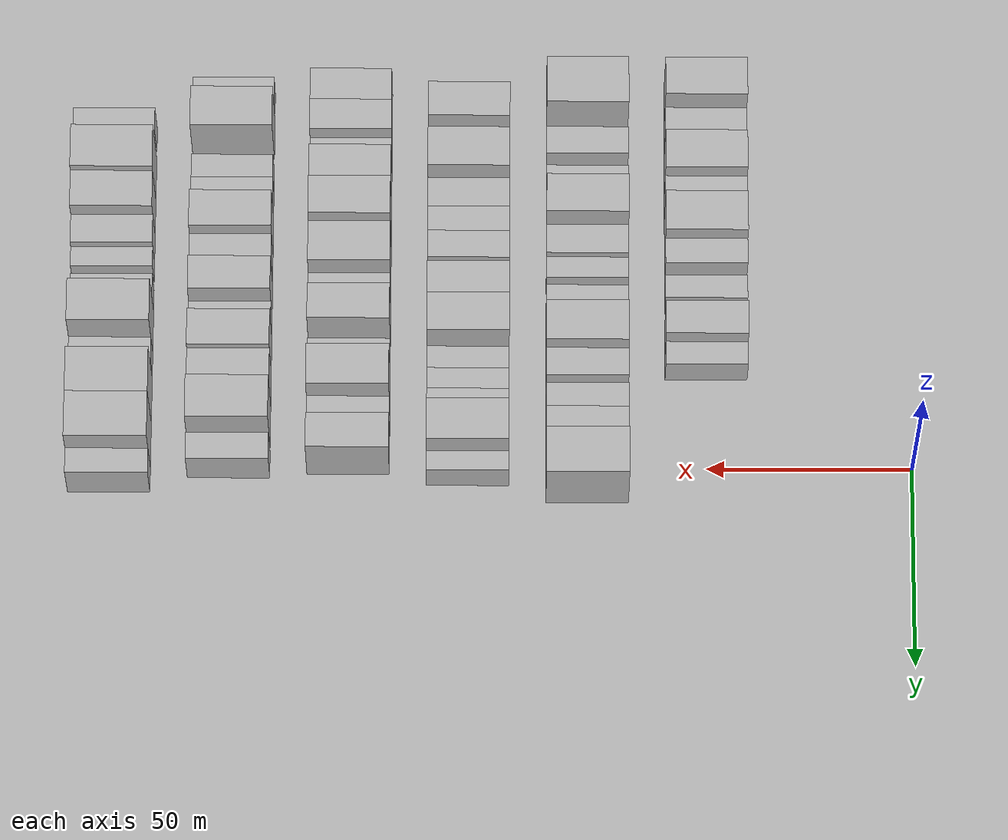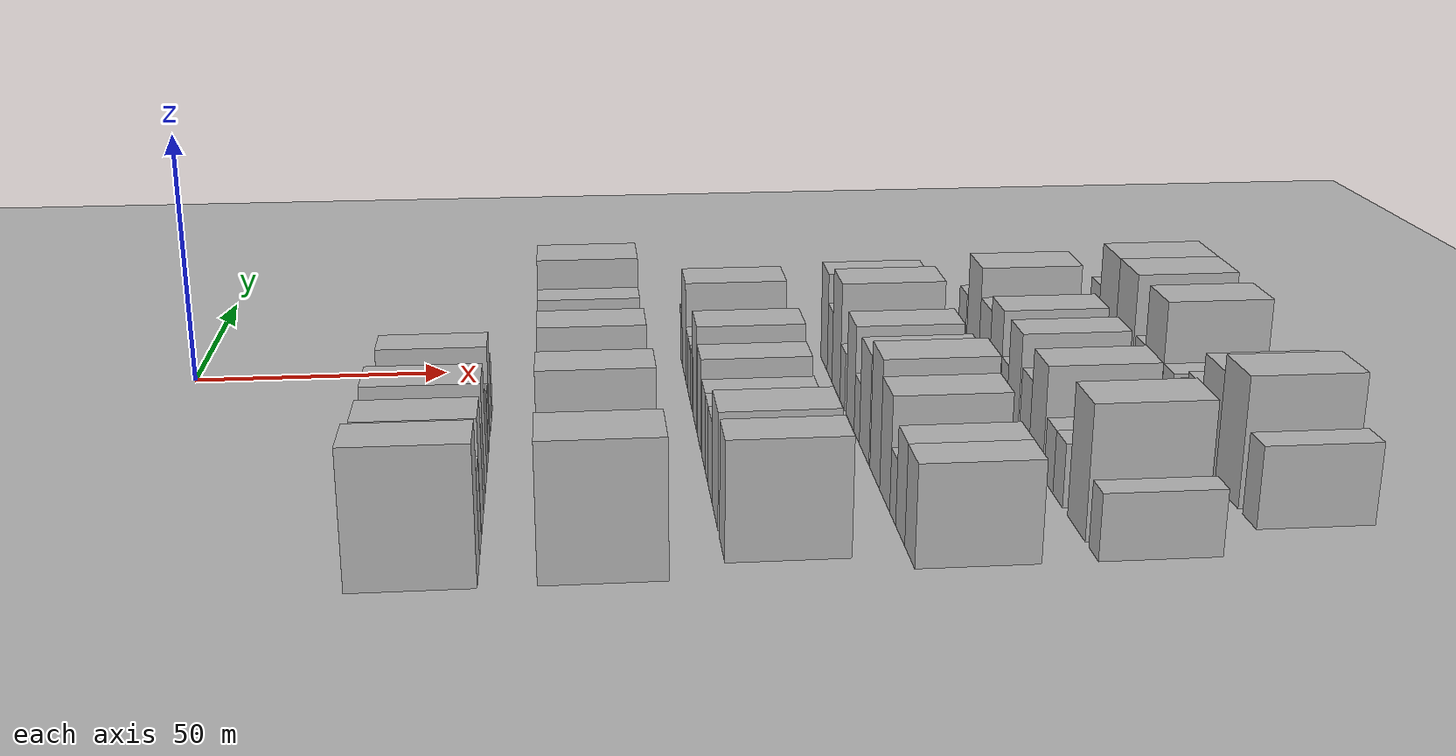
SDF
<sdf version="1.6">
 <world name="default">
  <include><name>ground_plane_1</name><uri>model://HANNAS_ground_plane</uri></include>
  <include>
   <name>ground_plane_2</name>
   <uri>model://HANNAS_ground_plane</uri>
   <pose>100 0 0  0 0 0</pose>
  </include>
  <model name="building_44">
   <static>1</static>
   <pose>50.0000 -93.6121 0 0.000000 0.000000 0.000000</pose>
   <link name="link">
    <pose>0 0 12.00 0 0 0</pose>
    <collision name="collision"><geometry><box><size>20.0000 9.6798 24.0000</size></box></geometry></collision>
    <visual name="visual">
     <cast_shadows>0</cast_shadows>
     <geometry><box><size>20.0000 9.6798 24.0000</size></box></geometry>
     <material>
      <script>
       <uri>model://HANNAS_wall/materials/scripts</uri>
       <uri>model://HANNAS_wall/materials/textures</uri>
       <name>vrc/HANNAS_wall</name>
      </script>
     </material>
    </visual>
   </link>
  </model>
  <model name="building_45">
   <static>1</static>
   <pose>50.0000 -85.1599 0 0.000000 0.000000 0.000000</pose>
   <link name="link">
    <pose>0 0 7.50 0 0 0</pose>
    <collision name="collision"><geometry><box><size>20.0000 7.2246 15.0000</size></box></geometry></collision>
    <visual name="visual">
     <cast_shadows>0</cast_shadows>
     <geometry><box><size>20.0000 7.2246 15.0000</size></box></geometry>
     <material>
      <script>
       <uri>model://HANNAS_wall/materials/scripts</uri>
       <uri>model://HANNAS_wall/materials/textures</uri>
       <name>vrc/HANNAS_wall</name>
      </script>
     </material>
    </visual>
   </link>
  </model>
  <model name="building_46">
   <static>1</static>
   <pose>50.0000 -75.6709 0 0.000000 0.000000 0.000000</pose>
   <link name="link">
    <pose>0 0 10.50 0 0 0</pose>
    <collision name="collision"><geometry><box><size>20.0000 9.7534 21.0000</size></box></geometry></collision>
    <visual name="visual">
     <cast_shadows>0</cast_shadows>
     <geometry><box><size>20.0000 9.7534 21.0000</size></box></geometry>
     <material>
      <script>
       <uri>model://HANNAS_wall/materials/scripts</uri>
       <uri>model://HANNAS_wall/materials/textures</uri>
       <name>vrc/HANNAS_wall</name>
      </script>
     </material>
    </visual>
   </link>
  </model>
  <model name="building_47">
   <static>1</static>
   <pose>50.0000 -67.7135 0 0.000000 0.000000 0.000000</pose>
   <link name="link">
    <pose>0 0 7.50 0 0 0</pose>
    <collision name="collision"><geometry><box><size>20.0000 6.1614 15.0000</size></box></geometry></collision>
    <visual name="visual">
     <cast_shadows>0</cast_shadows>
     <geometry><box><size>20.0000 6.1614 15.0000</size></box></geometry>
     <material>
      <script>
       <uri>model://HANNAS_wall/materials/scripts</uri>
       <uri>model://HANNAS_wall/materials/textures</uri>
       <name>vrc/HANNAS_wall</name>
      </script>
     </material>
    </visual>
   </link>
  </model>
  <model name="building_48">
   <static>1</static>
   <pose>50.0000 -59.5638 0 0.000000 0.000000 0.000000</pose>
   <link name="link">
    <pose>0 0 10.50 0 0 0</pose>
    <collision name="collision"><geometry><box><size>20.0000 10.1380 21.0000</size></box></geometry></collision>
    <visual name="visual">
     <cast_shadows>0</cast_shadows>
     <geometry><box><size>20.0000 10.1380 21.0000</size></box></geometry>
     <material>
      <script>
       <uri>model://HANNAS_wall/materials/scripts</uri>
       <uri>model://HANNAS_wall/materials/textures</uri>
       <name>vrc/HANNAS_wall</name>
      </script>
     </material>
    </visual>
   </link>
  </model>
  <model name="building_49">
   <static>1</static>
   <pose>50.0000 -51.2723 0 0.000000 0.000000 0.000000</pose>
   <link name="link">
    <pose>0 0 7.50 0 0 0</pose>
    <collision name="collision"><geometry><box><size>20.0000 6.4450 15.0000</size></box></geometry></collision>
    <visual name="visual">
     <cast_shadows>0</cast_shadows>
     <geometry><box><size>20.0000 6.4450 15.0000</size></box></geometry>
     <material>
      <script>
       <uri>model://HANNAS_wall/materials/scripts</uri>
       <uri>model://HANNAS_wall/materials/textures</uri>
       <name>vrc/HANNAS_wall</name>
      </script>
     </material>
    </visual>
   </link>
  </model>
  <model name="building_50">
   <static>1</static>
   <pose>50.0000 -43.1082 0 0.000000 0.000000 0.000000</pose>
   <link name="link">
    <pose>0 0 6.00 0 0 0</pose>
    <collision name="collision"><geometry><box><size>20.0000 5.8833 12.0000</size></box></geometry></collision>
    <visual name="visual">
     <cast_shadows>0</cast_shadows>
     <geometry><box><size>20.0000 5.8833 12.0000</size></box></geometry>
     <material>
      <script>
       <uri>model://HANNAS_wall/materials/scripts</uri>
       <uri>model://HANNAS_wall/materials/textures</uri>
       <name>vrc/HANNAS_wall</name>
      </script>
     </material>
    </visual>
   </link>
  </model>
  <model name="building_51">
   <static>1</static>
   <pose>50.0000 -32.9774 0 0.000000 0.000000 0.000000</pose>
   <link name="link">
    <pose>0 0 9.00 0 0 0</pose>
    <collision name="collision"><geometry><box><size>20.0000 8.3782 18.0000</size></box></geometry></collision>
    <visual name="visual">
     <cast_shadows>0</cast_shadows>
     <geometry><box><size>20.0000 8.3782 18.0000</size></box></geometry>
     <material>
      <script>
       <uri>model://HANNAS_wall/materials/scripts</uri>
       <uri>model://HANNAS_wall/materials/textures</uri>
       <name>vrc/HANNAS_wall</name>
      </script>
     </material>
    </visual>
   </link>
  </model>
  <model name="building_52">
   <static>1</static>
   <pose>50.0000 -25.8798 0 0.000000 0.000000 0.000000</pose>
   <link name="link">
    <pose>0 0 6.00 0 0 0</pose>
    <collision name="collision"><geometry><box><size>20.0000 5.8171 12.0000</size></box></geometry></collision>
    <visual name="visual">
     <cast_shadows>0</cast_shadows>
     <geometry><box><size>20.0000 5.8171 12.0000</size></box></geometry>
     <material>
      <script>
       <uri>model://HANNAS_wall/materials/scripts</uri>
       <uri>model://HANNAS_wall/materials/textures</uri>
       <name>vrc/HANNAS_wall</name>
      </script>
     </material>
    </visual>
   </link>
  </model>
  <model name="building_153">
   <static>1</static>
   <pose>79.0000 -92.5378 0 0.000000 0.000000 0.000000</pose>
   <link name="link">
    <pose>0 0 12.00 0 0 0</pose>
    <collision name="collision"><geometry><box><size>20.0000 11.7853 24.0000</size></box></geometry></collision>
    <visual name="visual">
     <cast_shadows>0</cast_shadows>
     <geometry><box><size>20.0000 11.7853 24.0000</size></box></geometry>
     <material>
      <script>
       <uri>model://HANNAS_wall/materials/scripts</uri>
       <uri>model://HANNAS_wall/materials/textures</uri>
       <name>vrc/HANNAS_wall</name>
      </script>
     </material>
    </visual>
   </link>
  </model>
  <model name="building_154">
   <static>1</static>
   <pose>79.0000 -80.1699 0 0.000000 0.000000 0.000000</pose>
   <link name="link">
    <pose>0 0 7.50 0 0 0</pose>
    <collision name="collision"><geometry><box><size>20.0000 6.9505 15.0000</size></box></geometry></collision>
    <visual name="visual">
     <cast_shadows>0</cast_shadows>
     <geometry><box><size>20.0000 6.9505 15.0000</size></box></geometry>
     <material>
      <script>
       <uri>model://HANNAS_wall/materials/scripts</uri>
       <uri>model://HANNAS_wall/materials/textures</uri>
       <name>vrc/HANNAS_wall</name>
      </script>
     </material>
    </visual>
   </link>
  </model>
  <model name="building_155">
   <static>1</static>
   <pose>79.0000 -71.7190 0 0.000000 0.000000 0.000000</pose>
   <link name="link">
    <pose>0 0 6.00 0 0 0</pose>
    <collision name="collision"><geometry><box><size>20.0000 5.9513 12.0000</size></box></geometry></collision>
    <visual name="visual">
     <cast_shadows>0</cast_shadows>
     <geometry><box><size>20.0000 5.9513 12.0000</size></box></geometry>
     <material>
      <script>
       <uri>model://HANNAS_wall/materials/scripts</uri>
       <uri>model://HANNAS_wall/materials/textures</uri>
       <name>vrc/HANNAS_wall</name>
      </script>
     </material>
    </visual>
   </link>
  </model>
  <model name="building_156">
   <static>1</static>
   <pose>79.0000 -62.8747 0 0.000000 0.000000 0.000000</pose>
   <link name="link">
    <pose>0 0 12.00 0 0 0</pose>
    <collision name="collision"><geometry><box><size>20.0000 9.7372 24.0000</size></box></geometry></collision>
    <visual name="visual">
     <cast_shadows>0</cast_shadows>
     <geometry><box><size>20.0000 9.7372 24.0000</size></box></geometry>
     <material>
      <script>
       <uri>model://HANNAS_wall/materials/scripts</uri>
       <uri>model://HANNAS_wall/materials/textures</uri>
       <name>vrc/HANNAS_wall</name>
      </script>
     </material>
    </visual>
   </link>
  </model>
  <model name="building_157">
   <static>1</static>
   <pose>79.0000 -54.3221 0 0.000000 0.000000 0.000000</pose>
   <link name="link">
    <pose>0 0 7.50 0 0 0</pose>
    <collision name="collision"><geometry><box><size>20.0000 7.3681 15.0000</size></box></geometry></collision>
    <visual name="visual">
     <cast_shadows>0</cast_shadows>
     <geometry><box><size>20.0000 7.3681 15.0000</size></box></geometry>
     <material>
      <script>
       <uri>model://HANNAS_wall/materials/scripts</uri>
       <uri>model://HANNAS_wall/materials/textures</uri>
       <name>vrc/HANNAS_wall</name>
      </script>
     </material>
    </visual>
   </link>
  </model>
  <model name="building_158">
   <static>1</static>
   <pose>79.0000 -47.9635 0 0.000000 0.000000 0.000000</pose>
   <link name="link">
    <pose>0 0 6.00 0 0 0</pose>
    <collision name="collision"><geometry><box><size>20.0000 5.3491 12.0000</size></box></geometry></collision>
    <visual name="visual">
     <cast_shadows>0</cast_shadows>
     <geometry><box><size>20.0000 5.3491 12.0000</size></box></geometry>
     <material>
      <script>
       <uri>model://HANNAS_wall/materials/scripts</uri>
       <uri>model://HANNAS_wall/materials/textures</uri>
       <name>vrc/HANNAS_wall</name>
      </script>
     </material>
    </visual>
   </link>
  </model>
  <model name="building_159">
   <static>1</static>
   <pose>79.0000 -39.2179 0 0.000000 0.000000 0.000000</pose>
   <link name="link">
    <pose>0 0 7.50 0 0 0</pose>
    <collision name="collision"><geometry><box><size>20.0000 6.1420 15.0000</size></box></geometry></collision>
    <visual name="visual">
     <cast_shadows>0</cast_shadows>
     <geometry><box><size>20.0000 6.1420 15.0000</size></box></geometry>
     <material>
      <script>
       <uri>model://HANNAS_wall/materials/scripts</uri>
       <uri>model://HANNAS_wall/materials/textures</uri>
       <name>vrc/HANNAS_wall</name>
      </script>
     </material>
    </visual>
   </link>
  </model>
  <model name="building_160">
   <static>1</static>
   <pose>79.0000 -31.0861 0 0.000000 0.000000 0.000000</pose>
   <link name="link">
    <pose>0 0 10.50 0 0 0</pose>
    <collision name="collision"><geometry><box><size>20.0000 10.1217 21.0000</size></box></geometry></collision>
    <visual name="visual">
     <cast_shadows>0</cast_shadows>
     <geometry><box><size>20.0000 10.1217 21.0000</size></box></geometry>
     <material>
      <script>
       <uri>model://HANNAS_wall/materials/scripts</uri>
       <uri>model://HANNAS_wall/materials/textures</uri>
       <name>vrc/HANNAS_wall</name>
      </script>
     </material>
    </visual>
   </link>
  </model>
  <model name="building_161">
   <static>1</static>
   <pose>79.0000 -22.5030 0 0.000000 0.000000 0.000000</pose>
   <link name="link">
    <pose>0 0 7.50 0 0 0</pose>
    <collision name="collision"><geometry><box><size>20.0000 7.0445 15.0000</size></box></geometry></collision>
    <visual name="visual">
     <cast_shadows>0</cast_shadows>
     <geometry><box><size>20.0000 7.0445 15.0000</size></box></geometry>
     <material>
      <script>
       <uri>model://HANNAS_wall/materials/scripts</uri>
       <uri>model://HANNAS_wall/materials/textures</uri>
       <name>vrc/HANNAS_wall</name>
      </script>
     </material>
    </visual>
   </link>
  </model>
  <model name="building_162">
   <static>1</static>
   <pose>79.0000 -13.4754 0 0.000000 0.000000 0.000000</pose>
   <link name="link">
    <pose>0 0 7.50 0 0 0</pose>
    <collision name="collision"><geometry><box><size>20.0000 7.0108 15.0000</size></box></geometry></collision>
    <visual name="visual">
     <cast_shadows>0</cast_shadows>
     <geometry><box><size>20.0000 7.0108 15.0000</size></box></geometry>
     <material>
      <script>
       <uri>model://HANNAS_wall/materials/scripts</uri>
       <uri>model://HANNAS_wall/materials/textures</uri>
       <name>vrc/HANNAS_wall</name>
      </script>
     </material>
    </visual>
   </link>
  </model>
  <model name="building_163">
   <static>1</static>
   <pose>79.0000 -6.3094 0 0.000000 0.000000 0.000000</pose>
   <link name="link">
    <pose>0 0 9.00 0 0 0</pose>
    <collision name="collision"><geometry><box><size>20.0000 7.3212 18.0000</size></box></geometry></collision>
    <visual name="visual">
     <cast_shadows>0</cast_shadows>
     <geometry><box><size>20.0000 7.3212 18.0000</size></box></geometry>
     <material>
      <script>
       <uri>model://HANNAS_wall/materials/scripts</uri>
       <uri>model://HANNAS_wall/materials/textures</uri>
       <name>vrc/HANNAS_wall</name>
      </script>
     </material>
    </visual>
   </link>
  </model>
  <model name="building_164">
   <static>1</static>
   <pose>79.0000 3.0788 0 0.000000 0.000000 0.000000</pose>
   <link name="link">
    <pose>0 0 12.00 0 0 0</pose>
    <collision name="collision"><geometry><box><size>20.0000 11.4552 24.0000</size></box></geometry></collision>
    <visual name="visual">
     <cast_shadows>0</cast_shadows>
     <geometry><box><size>20.0000 11.4552 24.0000</size></box></geometry>
     <material>
      <script>
       <uri>model://HANNAS_wall/materials/scripts</uri>
       <uri>model://HANNAS_wall/materials/textures</uri>
       <name>vrc/HANNAS_wall</name>
      </script>
     </material>
    </visual>
   </link>
  </model>
  <model name="building_271">
   <static>1</static>
   <pose>108.0000 -88.5672 0 0.000000 0.000000 0.000000</pose>
   <link name="link">
    <pose>0 0 10.50 0 0 0</pose>
    <collision name="collision"><geometry><box><size>20.0000 8.8581 21.0000</size></box></geometry></collision>
    <visual name="visual">
     <cast_shadows>0</cast_shadows>
     <geometry><box><size>20.0000 8.8581 21.0000</size></box></geometry>
     <material>
      <script>
       <uri>model://HANNAS_wall/materials/scripts</uri>
       <uri>model://HANNAS_wall/materials/textures</uri>
       <name>vrc/HANNAS_wall</name>
      </script>
     </material>
    </visual>
   </link>
  </model>
  <model name="building_272">
   <static>1</static>
   <pose>108.0000 -76.1078 0 0.000000 0.000000 0.000000</pose>
   <link name="link">
    <pose>0 0 10.50 0 0 0</pose>
    <collision name="collision"><geometry><box><size>20.0000 10.0607 21.0000</size></box></geometry></collision>
    <visual name="visual">
     <cast_shadows>0</cast_shadows>
     <geometry><box><size>20.0000 10.0607 21.0000</size></box></geometry>
     <material>
      <script>
       <uri>model://HANNAS_wall/materials/scripts</uri>
       <uri>model://HANNAS_wall/materials/textures</uri>
       <name>vrc/HANNAS_wall</name>
      </script>
     </material>
    </visual>
   </link>
  </model>
  <model name="building_273">
   <static>1</static>
   <pose>108.0000 -66.3536 0 0.000000 0.000000 0.000000</pose>
   <link name="link">
    <pose>0 0 7.50 0 0 0</pose>
    <collision name="collision"><geometry><box><size>20.0000 7.4477 15.0000</size></box></geometry></collision>
    <visual name="visual">
     <cast_shadows>0</cast_shadows>
     <geometry><box><size>20.0000 7.4477 15.0000</size></box></geometry>
     <material>
      <script>
       <uri>model://HANNAS_wall/materials/scripts</uri>
       <uri>model://HANNAS_wall/materials/textures</uri>
       <name>vrc/HANNAS_wall</name>
      </script>
     </material>
    </visual>
   </link>
  </model>
  <model name="building_274">
   <static>1</static>
   <pose>108.0000 -59.4831 0 0.000000 0.000000 0.000000</pose>
   <link name="link">
    <pose>0 0 7.50 0 0 0</pose>
    <collision name="collision"><geometry><box><size>20.0000 6.2932 15.0000</size></box></geometry></collision>
    <visual name="visual">
     <cast_shadows>0</cast_shadows>
     <geometry><box><size>20.0000 6.2932 15.0000</size></box></geometry>
     <material>
      <script>
       <uri>model://HANNAS_wall/materials/scripts</uri>
       <uri>model://HANNAS_wall/materials/textures</uri>
       <name>vrc/HANNAS_wall</name>
      </script>
     </material>
    </visual>
   </link>
  </model>
  <model name="building_275">
   <static>1</static>
   <pose>108.0000 -52.8586 0 0.000000 0.000000 0.000000</pose>
   <link name="link">
    <pose>0 0 7.50 0 0 0</pose>
    <collision name="collision"><geometry><box><size>20.0000 6.9560 15.0000</size></box></geometry></collision>
    <visual name="visual">
     <cast_shadows>0</cast_shadows>
     <geometry><box><size>20.0000 6.9560 15.0000</size></box></geometry>
     <material>
      <script>
       <uri>model://HANNAS_wall/materials/scripts</uri>
       <uri>model://HANNAS_wall/materials/textures</uri>
       <name>vrc/HANNAS_wall</name>
      </script>
     </material>
    </visual>
   </link>
  </model>
  <model name="building_276">
   <static>1</static>
   <pose>108.0000 -43.2104 0 0.000000 0.000000 0.000000</pose>
   <link name="link">
    <pose>0 0 9.00 0 0 0</pose>
    <collision name="collision"><geometry><box><size>20.0000 8.3403 18.0000</size></box></geometry></collision>
    <visual name="visual">
     <cast_shadows>0</cast_shadows>
     <geometry><box><size>20.0000 8.3403 18.0000</size></box></geometry>
     <material>
      <script>
       <uri>model://HANNAS_wall/materials/scripts</uri>
       <uri>model://HANNAS_wall/materials/textures</uri>
       <name>vrc/HANNAS_wall</name>
      </script>
     </material>
    </visual>
   </link>
  </model>
  <model name="building_277">
   <static>1</static>
   <pose>108.0000 -33.2147 0 0.000000 0.000000 0.000000</pose>
   <link name="link">
    <pose>0 0 10.50 0 0 0</pose>
    <collision name="collision"><geometry><box><size>20.0000 9.6512 21.0000</size></box></geometry></collision>
    <visual name="visual">
     <cast_shadows>0</cast_shadows>
     <geometry><box><size>20.0000 9.6512 21.0000</size></box></geometry>
     <material>
      <script>
       <uri>model://HANNAS_wall/materials/scripts</uri>
       <uri>model://HANNAS_wall/materials/textures</uri>
       <name>vrc/HANNAS_wall</name>
      </script>
     </material>
    </visual>
   </link>
  </model>
  <model name="building_278">
   <static>1</static>
   <pose>108.0000 -24.6119 0 0.000000 0.000000 0.000000</pose>
   <link name="link">
    <pose>0 0 6.00 0 0 0</pose>
    <collision name="collision"><geometry><box><size>20.0000 5.5544 12.0000</size></box></geometry></collision>
    <visual name="visual">
     <cast_shadows>0</cast_shadows>
     <geometry><box><size>20.0000 5.5544 12.0000</size></box></geometry>
     <material>
      <script>
       <uri>model://HANNAS_wall/materials/scripts</uri>
       <uri>model://HANNAS_wall/materials/textures</uri>
       <name>vrc/HANNAS_wall</name>
      </script>
     </material>
    </visual>
   </link>
  </model>
  <model name="building_279">
   <static>1</static>
   <pose>108.0000 -19.1885 0 0.000000 0.000000 0.000000</pose>
   <link name="link">
    <pose>0 0 6.00 0 0 0</pose>
    <collision name="collision"><geometry><box><size>20.0000 5.2924 12.0000</size></box></geometry></collision>
    <visual name="visual">
     <cast_shadows>0</cast_shadows>
     <geometry><box><size>20.0000 5.2924 12.0000</size></box></geometry>
     <material>
      <script>
       <uri>model://HANNAS_wall/materials/scripts</uri>
       <uri>model://HANNAS_wall/materials/textures</uri>
       <name>vrc/HANNAS_wall</name>
      </script>
     </material>
    </visual>
   </link>
  </model>
  <model name="building_280">
   <static>1</static>
   <pose>108.0000 -13.7075 0 0.000000 0.000000 0.000000</pose>
   <link name="link">
    <pose>0 0 6.00 0 0 0</pose>
    <collision name="collision"><geometry><box><size>20.0000 5.6695 12.0000</size></box></geometry></collision>
    <visual name="visual">
     <cast_shadows>0</cast_shadows>
     <geometry><box><size>20.0000 5.6695 12.0000</size></box></geometry>
     <material>
      <script>
       <uri>model://HANNAS_wall/materials/scripts</uri>
       <uri>model://HANNAS_wall/materials/textures</uri>
       <name>vrc/HANNAS_wall</name>
      </script>
     </material>
    </visual>
   </link>
  </model>
  <model name="building_281">
   <static>1</static>
   <pose>108.0000 -5.6900 0 0.000000 0.000000 0.000000</pose>
   <link name="link">
    <pose>0 0 10.50 0 0 0</pose>
    <collision name="collision"><geometry><box><size>20.0000 10.3655 21.0000</size></box></geometry></collision>
    <visual name="visual">
     <cast_shadows>0</cast_shadows>
     <geometry><box><size>20.0000 10.3655 21.0000</size></box></geometry>
     <material>
      <script>
       <uri>model://HANNAS_wall/materials/scripts</uri>
       <uri>model://HANNAS_wall/materials/textures</uri>
       <name>vrc/HANNAS_wall</name>
      </script>
     </material>
    </visual>
   </link>
  </model>
  <model name="building_282">
   <static>1</static>
   <pose>108.0000 1.9641 0 0.000000 0.000000 0.000000</pose>
   <link name="link">
    <pose>0 0 6.00 0 0 0</pose>
    <collision name="collision"><geometry><box><size>20.0000 4.9428 12.0000</size></box></geometry></collision>
    <visual name="visual">
     <cast_shadows>0</cast_shadows>
     <geometry><box><size>20.0000 4.9428 12.0000</size></box></geometry>
     <material>
      <script>
       <uri>model://HANNAS_wall/materials/scripts</uri>
       <uri>model://HANNAS_wall/materials/textures</uri>
       <name>vrc/HANNAS_wall</name>
      </script>
     </material>
    </visual>
   </link>
  </model>
  <model name="building_391">
   <static>1</static>
   <pose>137.0000 -93.5453 0 0.000000 0.000000 0.000000</pose>
   <link name="link">
    <pose>0 0 9.00 0 0 0</pose>
    <collision name="collision"><geometry><box><size>20.0000 8.1126 18.0000</size></box></geometry></collision>
    <visual name="visual">
     <cast_shadows>0</cast_shadows>
     <geometry><box><size>20.0000 8.1126 18.0000</size></box></geometry>
     <material>
      <script>
       <uri>model://HANNAS_wall/materials/scripts</uri>
       <uri>model://HANNAS_wall/materials/textures</uri>
       <name>vrc/HANNAS_wall</name>
      </script>
     </material>
    </visual>
   </link>
  </model>
  <model name="building_392">
   <static>1</static>
   <pose>137.0000 -85.6045 0 0.000000 0.000000 0.000000</pose>
   <link name="link">
    <pose>0 0 9.00 0 0 0</pose>
    <collision name="collision"><geometry><box><size>20.0000 7.7691 18.0000</size></box></geometry></collision>
    <visual name="visual">
     <cast_shadows>0</cast_shadows>
     <geometry><box><size>20.0000 7.7691 18.0000</size></box></geometry>
     <material>
      <script>
       <uri>model://HANNAS_wall/materials/scripts</uri>
       <uri>model://HANNAS_wall/materials/textures</uri>
       <name>vrc/HANNAS_wall</name>
      </script>
     </material>
    </visual>
   </link>
  </model>
  <model name="building_393">
   <static>1</static>
   <pose>137.0000 -79.0514 0 0.000000 0.000000 0.000000</pose>
   <link name="link">
    <pose>0 0 6.00 0 0 0</pose>
    <collision name="collision"><geometry><box><size>20.0000 5.3371 12.0000</size></box></geometry></collision>
    <visual name="visual">
     <cast_shadows>0</cast_shadows>
     <geometry><box><size>20.0000 5.3371 12.0000</size></box></geometry>
     <material>
      <script>
       <uri>model://HANNAS_wall/materials/scripts</uri>
       <uri>model://HANNAS_wall/materials/textures</uri>
       <name>vrc/HANNAS_wall</name>
      </script>
     </material>
    </visual>
   </link>
  </model>
  <model name="building_394">
   <static>1</static>
   <pose>137.0000 -71.7238 0 0.000000 0.000000 0.000000</pose>
   <link name="link">
    <pose>0 0 10.50 0 0 0</pose>
    <collision name="collision"><geometry><box><size>20.0000 9.3181 21.0000</size></box></geometry></collision>
    <visual name="visual">
     <cast_shadows>0</cast_shadows>
     <geometry><box><size>20.0000 9.3181 21.0000</size></box></geometry>
     <material>
      <script>
       <uri>model://HANNAS_wall/materials/scripts</uri>
       <uri>model://HANNAS_wall/materials/textures</uri>
       <name>vrc/HANNAS_wall</name>
      </script>
     </material>
    </visual>
   </link>
  </model>
  <model name="building_395">
   <static>1</static>
   <pose>137.0000 -62.2175 0 0.000000 0.000000 0.000000</pose>
   <link name="link">
    <pose>0 0 12.00 0 0 0</pose>
    <collision name="collision"><geometry><box><size>20.0000 9.6945 24.0000</size></box></geometry></collision>
    <visual name="visual">
     <cast_shadows>0</cast_shadows>
     <geometry><box><size>20.0000 9.6945 24.0000</size></box></geometry>
     <material>
      <script>
       <uri>model://HANNAS_wall/materials/scripts</uri>
       <uri>model://HANNAS_wall/materials/textures</uri>
       <name>vrc/HANNAS_wall</name>
      </script>
     </material>
    </visual>
   </link>
  </model>
  <model name="building_396">
   <static>1</static>
   <pose>137.0000 -51.3146 0 0.000000 0.000000 0.000000</pose>
   <link name="link">
    <pose>0 0 10.50 0 0 0</pose>
    <collision name="collision"><geometry><box><size>20.0000 10.1114 21.0000</size></box></geometry></collision>
    <visual name="visual">
     <cast_shadows>0</cast_shadows>
     <geometry><box><size>20.0000 10.1114 21.0000</size></box></geometry>
     <material>
      <script>
       <uri>model://HANNAS_wall/materials/scripts</uri>
       <uri>model://HANNAS_wall/materials/textures</uri>
       <name>vrc/HANNAS_wall</name>
      </script>
     </material>
    </visual>
   </link>
  </model>
  <model name="building_397">
   <static>1</static>
   <pose>137.0000 -43.3084 0 0.000000 0.000000 0.000000</pose>
   <link name="link">
    <pose>0 0 6.00 0 0 0</pose>
    <collision name="collision"><geometry><box><size>20.0000 5.9009 12.0000</size></box></geometry></collision>
    <visual name="visual">
     <cast_shadows>0</cast_shadows>
     <geometry><box><size>20.0000 5.9009 12.0000</size></box></geometry>
     <material>
      <script>
       <uri>model://HANNAS_wall/materials/scripts</uri>
       <uri>model://HANNAS_wall/materials/textures</uri>
       <name>vrc/HANNAS_wall</name>
      </script>
     </material>
    </visual>
   </link>
  </model>
  <model name="building_398">
   <static>1</static>
   <pose>137.0000 -35.8367 0 0.000000 0.000000 0.000000</pose>
   <link name="link">
    <pose>0 0 10.50 0 0 0</pose>
    <collision name="collision"><geometry><box><size>20.0000 9.0425 21.0000</size></box></geometry></collision>
    <visual name="visual">
     <cast_shadows>0</cast_shadows>
     <geometry><box><size>20.0000 9.0425 21.0000</size></box></geometry>
     <material>
      <script>
       <uri>model://HANNAS_wall/materials/scripts</uri>
       <uri>model://HANNAS_wall/materials/textures</uri>
       <name>vrc/HANNAS_wall</name>
      </script>
     </material>
    </visual>
   </link>
  </model>
  <model name="building_399">
   <static>1</static>
   <pose>137.0000 -26.4600 0 0.000000 0.000000 0.000000</pose>
   <link name="link">
    <pose>0 0 6.00 0 0 0</pose>
    <collision name="collision"><geometry><box><size>20.0000 5.7110 12.0000</size></box></geometry></collision>
    <visual name="visual">
     <cast_shadows>0</cast_shadows>
     <geometry><box><size>20.0000 5.7110 12.0000</size></box></geometry>
     <material>
      <script>
       <uri>model://HANNAS_wall/materials/scripts</uri>
       <uri>model://HANNAS_wall/materials/textures</uri>
       <name>vrc/HANNAS_wall</name>
      </script>
     </material>
    </visual>
   </link>
  </model>
  <model name="building_400">
   <static>1</static>
   <pose>137.0000 -18.4862 0 0.000000 0.000000 0.000000</pose>
   <link name="link">
    <pose>0 0 12.00 0 0 0</pose>
    <collision name="collision"><geometry><box><size>20.0000 10.2367 24.0000</size></box></geometry></collision>
    <visual name="visual">
     <cast_shadows>0</cast_shadows>
     <geometry><box><size>20.0000 10.2367 24.0000</size></box></geometry>
     <material>
      <script>
       <uri>model://HANNAS_wall/materials/scripts</uri>
       <uri>model://HANNAS_wall/materials/textures</uri>
       <name>vrc/HANNAS_wall</name>
      </script>
     </material>
    </visual>
   </link>
  </model>
  <model name="building_401">
   <static>1</static>
   <pose>137.0000 -10.2114 0 0.000000 0.000000 0.000000</pose>
   <link name="link">
    <pose>0 0 7.50 0 0 0</pose>
    <collision name="collision"><geometry><box><size>20.0000 6.3129 15.0000</size></box></geometry></collision>
    <visual name="visual">
     <cast_shadows>0</cast_shadows>
     <geometry><box><size>20.0000 6.3129 15.0000</size></box></geometry>
     <material>
      <script>
       <uri>model://HANNAS_wall/materials/scripts</uri>
       <uri>model://HANNAS_wall/materials/textures</uri>
       <name>vrc/HANNAS_wall</name>
      </script>
     </material>
    </visual>
   </link>
  </model>
  <model name="building_402">
   <static>1</static>
   <pose>137.0000 -2.6656 0 0.000000 0.000000 0.000000</pose>
   <link name="link">
    <pose>0 0 10.50 0 0 0</pose>
    <collision name="collision"><geometry><box><size>20.0000 8.7787 21.0000</size></box></geometry></collision>
    <visual name="visual">
     <cast_shadows>0</cast_shadows>
     <geometry><box><size>20.0000 8.7787 21.0000</size></box></geometry>
     <material>
      <script>
       <uri>model://HANNAS_wall/materials/scripts</uri>
       <uri>model://HANNAS_wall/materials/textures</uri>
       <name>vrc/HANNAS_wall</name>
      </script>
     </material>
    </visual>
   </link>
  </model>
  <model name="building_506">
   <static>1</static>
   <pose>166.0000 -94.9549 0 0.000000 0.000000 0.000000</pose>
   <link name="link">
    <pose>0 0 6.00 0 0 0</pose>
    <collision name="collision"><geometry><box><size>20.0000 5.2132 12.0000</size></box></geometry></collision>
    <visual name="visual">
     <cast_shadows>0</cast_shadows>
     <geometry><box><size>20.0000 5.2132 12.0000</size></box></geometry>
     <material>
      <script>
       <uri>model://HANNAS_wall/materials/scripts</uri>
       <uri>model://HANNAS_wall/materials/textures</uri>
       <name>vrc/HANNAS_wall</name>
      </script>
     </material>
    </visual>
   </link>
  </model>
  <model name="building_507">
   <static>1</static>
   <pose>166.0000 -85.2765 0 0.000000 0.000000 0.000000</pose>
   <link name="link">
    <pose>0 0 12.00 0 0 0</pose>
    <collision name="collision"><geometry><box><size>20.0000 10.1436 24.0000</size></box></geometry></collision>
    <visual name="visual">
     <cast_shadows>0</cast_shadows>
     <geometry><box><size>20.0000 10.1436 24.0000</size></box></geometry>
     <material>
      <script>
       <uri>model://HANNAS_wall/materials/scripts</uri>
       <uri>model://HANNAS_wall/materials/textures</uri>
       <name>vrc/HANNAS_wall</name>
      </script>
     </material>
    </visual>
   </link>
  </model>
  <model name="building_508">
   <static>1</static>
   <pose>166.0000 -74.2214 0 0.000000 0.000000 0.000000</pose>
   <link name="link">
    <pose>0 0 6.00 0 0 0</pose>
    <collision name="collision"><geometry><box><size>20.0000 5.9667 12.0000</size></box></geometry></collision>
    <visual name="visual">
     <cast_shadows>0</cast_shadows>
     <geometry><box><size>20.0000 5.9667 12.0000</size></box></geometry>
     <material>
      <script>
       <uri>model://HANNAS_wall/materials/scripts</uri>
       <uri>model://HANNAS_wall/materials/textures</uri>
       <name>vrc/HANNAS_wall</name>
      </script>
     </material>
    </visual>
   </link>
  </model>
  <model name="building_509">
   <static>1</static>
   <pose>166.0000 -68.3142 0 0.000000 0.000000 0.000000</pose>
   <link name="link">
    <pose>0 0 6.00 0 0 0</pose>
    <collision name="collision"><geometry><box><size>20.0000 5.8477 12.0000</size></box></geometry></collision>
    <visual name="visual">
     <cast_shadows>0</cast_shadows>
     <geometry><box><size>20.0000 5.8477 12.0000</size></box></geometry>
     <material>
      <script>
       <uri>model://HANNAS_wall/materials/scripts</uri>
       <uri>model://HANNAS_wall/materials/textures</uri>
       <name>vrc/HANNAS_wall</name>
      </script>
     </material>
    </visual>
   </link>
  </model>
  <model name="building_510">
   <static>1</static>
   <pose>166.0000 -59.7839 0 0.000000 0.000000 0.000000</pose>
   <link name="link">
    <pose>0 0 10.50 0 0 0</pose>
    <collision name="collision"><geometry><box><size>20.0000 9.2129 21.0000</size></box></geometry></collision>
    <visual name="visual">
     <cast_shadows>0</cast_shadows>
     <geometry><box><size>20.0000 9.2129 21.0000</size></box></geometry>
     <material>
      <script>
       <uri>model://HANNAS_wall/materials/scripts</uri>
       <uri>model://HANNAS_wall/materials/textures</uri>
       <name>vrc/HANNAS_wall</name>
      </script>
     </material>
    </visual>
   </link>
  </model>
  <model name="building_511">
   <static>1</static>
   <pose>166.0000 -51.7171 0 0.000000 0.000000 0.000000</pose>
   <link name="link">
    <pose>0 0 7.50 0 0 0</pose>
    <collision name="collision"><geometry><box><size>20.0000 6.9207 15.0000</size></box></geometry></collision>
    <visual name="visual">
     <cast_shadows>0</cast_shadows>
     <geometry><box><size>20.0000 6.9207 15.0000</size></box></geometry>
     <material>
      <script>
       <uri>model://HANNAS_wall/materials/scripts</uri>
       <uri>model://HANNAS_wall/materials/textures</uri>
       <name>vrc/HANNAS_wall</name>
      </script>
     </material>
    </visual>
   </link>
  </model>
  <model name="building_512">
   <static>1</static>
   <pose>166.0000 -43.0191 0 0.000000 0.000000 0.000000</pose>
   <link name="link">
    <pose>0 0 10.50 0 0 0</pose>
    <collision name="collision"><geometry><box><size>20.0000 8.4752 21.0000</size></box></geometry></collision>
    <visual name="visual">
     <cast_shadows>0</cast_shadows>
     <geometry><box><size>20.0000 8.4752 21.0000</size></box></geometry>
     <material>
      <script>
       <uri>model://HANNAS_wall/materials/scripts</uri>
       <uri>model://HANNAS_wall/materials/textures</uri>
       <name>vrc/HANNAS_wall</name>
      </script>
     </material>
    </visual>
   </link>
  </model>
  <model name="building_513">
   <static>1</static>
   <pose>166.0000 -36.1562 0 0.000000 0.000000 0.000000</pose>
   <link name="link">
    <pose>0 0 6.00 0 0 0</pose>
    <collision name="collision"><geometry><box><size>20.0000 5.2507 12.0000</size></box></geometry></collision>
    <visual name="visual">
     <cast_shadows>0</cast_shadows>
     <geometry><box><size>20.0000 5.2507 12.0000</size></box></geometry>
     <material>
      <script>
       <uri>model://HANNAS_wall/materials/scripts</uri>
       <uri>model://HANNAS_wall/materials/textures</uri>
       <name>vrc/HANNAS_wall</name>
      </script>
     </material>
    </visual>
   </link>
  </model>
  <model name="building_514">
   <static>1</static>
   <pose>166.0000 -28.9841 0 0.000000 0.000000 0.000000</pose>
   <link name="link">
    <pose>0 0 10.50 0 0 0</pose>
    <collision name="collision"><geometry><box><size>20.0000 9.0934 21.0000</size></box></geometry></collision>
    <visual name="visual">
     <cast_shadows>0</cast_shadows>
     <geometry><box><size>20.0000 9.0934 21.0000</size></box></geometry>
     <material>
      <script>
       <uri>model://HANNAS_wall/materials/scripts</uri>
       <uri>model://HANNAS_wall/materials/textures</uri>
       <name>vrc/HANNAS_wall</name>
      </script>
     </material>
    </visual>
   </link>
  </model>
  <model name="building_515">
   <static>1</static>
   <pose>166.0000 -19.9753 0 0.000000 0.000000 0.000000</pose>
   <link name="link">
    <pose>0 0 9.00 0 0 0</pose>
    <collision name="collision"><geometry><box><size>20.0000 8.9243 18.0000</size></box></geometry></collision>
    <visual name="visual">
     <cast_shadows>0</cast_shadows>
     <geometry><box><size>20.0000 8.9243 18.0000</size></box></geometry>
     <material>
      <script>
       <uri>model://HANNAS_wall/materials/scripts</uri>
       <uri>model://HANNAS_wall/materials/textures</uri>
       <name>vrc/HANNAS_wall</name>
      </script>
     </material>
    </visual>
   </link>
  </model>
  <model name="building_516">
   <static>1</static>
   <pose>166.0000 -10.1931 0 0.000000 0.000000 0.000000</pose>
   <link name="link">
    <pose>0 0 12.00 0 0 0</pose>
    <collision name="collision"><geometry><box><size>20.0000 10.6402 24.0000</size></box></geometry></collision>
    <visual name="visual">
     <cast_shadows>0</cast_shadows>
     <geometry><box><size>20.0000 10.6402 24.0000</size></box></geometry>
     <material>
      <script>
       <uri>model://HANNAS_wall/materials/scripts</uri>
       <uri>model://HANNAS_wall/materials/textures</uri>
       <name>vrc/HANNAS_wall</name>
      </script>
     </material>
    </visual>
   </link>
  </model>
  <model name="building_517">
   <static>1</static>
   <pose>166.0000 -0.5885 0 0.000000 0.000000 0.000000</pose>
   <link name="link">
    <pose>0 0 7.50 0 0 0</pose>
    <collision name="collision"><geometry><box><size>20.0000 6.5689 15.0000</size></box></geometry></collision>
    <visual name="visual">
     <cast_shadows>0</cast_shadows>
     <geometry><box><size>20.0000 6.5689 15.0000</size></box></geometry>
     <material>
      <script>
       <uri>model://HANNAS_wall/materials/scripts</uri>
       <uri>model://HANNAS_wall/materials/textures</uri>
       <name>vrc/HANNAS_wall</name>
      </script>
     </material>
    </visual>
   </link>
  </model>
  <model name="building_620">
   <static>1</static>
   <pose>195.0000 -85.1717 0 0.000000 0.000000 0.000000</pose>
   <link name="link">
    <pose>0 0 7.50 0 0 0</pose>
    <collision name="collision"><geometry><box><size>20.0000 6.0602 15.0000</size></box></geometry></collision>
    <visual name="visual">
     <cast_shadows>0</cast_shadows>
     <geometry><box><size>20.0000 6.0602 15.0000</size></box></geometry>
     <material>
      <script>
       <uri>model://HANNAS_wall/materials/scripts</uri>
       <uri>model://HANNAS_wall/materials/textures</uri>
       <name>vrc/HANNAS_wall</name>
      </script>
     </material>
    </visual>
   </link>
  </model>
  <model name="building_621">
   <static>1</static>
   <pose>195.0000 -74.7298 0 0.000000 0.000000 0.000000</pose>
   <link name="link">
    <pose>0 0 12.00 0 0 0</pose>
    <collision name="collision"><geometry><box><size>20.0000 10.8236 24.0000</size></box></geometry></collision>
    <visual name="visual">
     <cast_shadows>0</cast_shadows>
     <geometry><box><size>20.0000 10.8236 24.0000</size></box></geometry>
     <material>
      <script>
       <uri>model://HANNAS_wall/materials/scripts</uri>
       <uri>model://HANNAS_wall/materials/textures</uri>
       <name>vrc/HANNAS_wall</name>
      </script>
     </material>
    </visual>
   </link>
  </model>
  <model name="building_622">
   <static>1</static>
   <pose>195.0000 -64.7246 0 0.000000 0.000000 0.000000</pose>
   <link name="link">
    <pose>0 0 10.50 0 0 0</pose>
    <collision name="collision"><geometry><box><size>20.0000 9.1868 21.0000</size></box></geometry></collision>
    <visual name="visual">
     <cast_shadows>0</cast_shadows>
     <geometry><box><size>20.0000 9.1868 21.0000</size></box></geometry>
     <material>
      <script>
       <uri>model://HANNAS_wall/materials/scripts</uri>
       <uri>model://HANNAS_wall/materials/textures</uri>
       <name>vrc/HANNAS_wall</name>
      </script>
     </material>
    </visual>
   </link>
  </model>
  <model name="building_623">
   <static>1</static>
   <pose>195.0000 -56.5050 0 0.000000 0.000000 0.000000</pose>
   <link name="link">
    <pose>0 0 7.50 0 0 0</pose>
    <collision name="collision"><geometry><box><size>20.0000 7.2522 15.0000</size></box></geometry></collision>
    <visual name="visual">
     <cast_shadows>0</cast_shadows>
     <geometry><box><size>20.0000 7.2522 15.0000</size></box></geometry>
     <material>
      <script>
       <uri>model://HANNAS_wall/materials/scripts</uri>
       <uri>model://HANNAS_wall/materials/textures</uri>
       <name>vrc/HANNAS_wall</name>
      </script>
     </material>
    </visual>
   </link>
  </model>
  <model name="building_624">
   <static>1</static>
   <pose>195.0000 -50.3749 0 0.000000 0.000000 0.000000</pose>
   <link name="link">
    <pose>0 0 6.00 0 0 0</pose>
    <collision name="collision"><geometry><box><size>20.0000 5.0080 12.0000</size></box></geometry></collision>
    <visual name="visual">
     <cast_shadows>0</cast_shadows>
     <geometry><box><size>20.0000 5.0080 12.0000</size></box></geometry>
     <material>
      <script>
       <uri>model://HANNAS_wall/materials/scripts</uri>
       <uri>model://HANNAS_wall/materials/textures</uri>
       <name>vrc/HANNAS_wall</name>
      </script>
     </material>
    </visual>
   </link>
  </model>
  <model name="building_625">
   <static>1</static>
   <pose>195.0000 -42.9663 0 0.000000 0.000000 0.000000</pose>
   <link name="link">
    <pose>0 0 6.00 0 0 0</pose>
    <collision name="collision"><geometry><box><size>20.0000 5.8093 12.0000</size></box></geometry></collision>
    <visual name="visual">
     <cast_shadows>0</cast_shadows>
     <geometry><box><size>20.0000 5.8093 12.0000</size></box></geometry>
     <material>
      <script>
       <uri>model://HANNAS_wall/materials/scripts</uri>
       <uri>model://HANNAS_wall/materials/textures</uri>
       <name>vrc/HANNAS_wall</name>
      </script>
     </material>
    </visual>
   </link>
  </model>
  <model name="building_626">
   <static>1</static>
   <pose>195.0000 -34.7594 0 0.000000 0.000000 0.000000</pose>
   <link name="link">
    <pose>0 0 12.00 0 0 0</pose>
    <collision name="collision"><geometry><box><size>20.0000 10.6046 24.0000</size></box></geometry></collision>
    <visual name="visual">
     <cast_shadows>0</cast_shadows>
     <geometry><box><size>20.0000 10.6046 24.0000</size></box></geometry>
     <material>
      <script>
       <uri>model://HANNAS_wall/materials/scripts</uri>
       <uri>model://HANNAS_wall/materials/textures</uri>
       <name>vrc/HANNAS_wall</name>
      </script>
     </material>
    </visual>
   </link>
  </model>
  <model name="building_627">
   <static>1</static>
   <pose>195.0000 -26.5392 0 0.000000 0.000000 0.000000</pose>
   <link name="link">
    <pose>0 0 6.00 0 0 0</pose>
    <collision name="collision"><geometry><box><size>20.0000 5.8356 12.0000</size></box></geometry></collision>
    <visual name="visual">
     <cast_shadows>0</cast_shadows>
     <geometry><box><size>20.0000 5.8356 12.0000</size></box></geometry>
     <material>
      <script>
       <uri>model://HANNAS_wall/materials/scripts</uri>
       <uri>model://HANNAS_wall/materials/textures</uri>
       <name>vrc/HANNAS_wall</name>
      </script>
     </material>
    </visual>
   </link>
  </model>
  <model name="building_628">
   <static>1</static>
   <pose>195.0000 -16.9366 0 0.000000 0.000000 0.000000</pose>
   <link name="link">
    <pose>0 0 12.00 0 0 0</pose>
    <collision name="collision"><geometry><box><size>20.0000 11.3697 24.0000</size></box></geometry></collision>
    <visual name="visual">
     <cast_shadows>0</cast_shadows>
     <geometry><box><size>20.0000 11.3697 24.0000</size></box></geometry>
     <material>
      <script>
       <uri>model://HANNAS_wall/materials/scripts</uri>
       <uri>model://HANNAS_wall/materials/textures</uri>
       <name>vrc/HANNAS_wall</name>
      </script>
     </material>
    </visual>
   </link>
  </model>
  <model name="building_629">
   <static>1</static>
   <pose>195.0000 -5.5239 0 0.000000 0.000000 0.000000</pose>
   <link name="link">
    <pose>0 0 12.00 0 0 0</pose>
    <collision name="collision"><geometry><box><size>20.0000 11.4556 24.0000</size></box></geometry></collision>
    <visual name="visual">
     <cast_shadows>0</cast_shadows>
     <geometry><box><size>20.0000 11.4556 24.0000</size></box></geometry>
     <material>
      <script>
       <uri>model://HANNAS_wall/materials/scripts</uri>
       <uri>model://HANNAS_wall/materials/textures</uri>
       <name>vrc/HANNAS_wall</name>
      </script>
     </material>
    </visual>
   </link>
  </model>
  <model name="building_630">
   <static>1</static>
   <pose>195.0000 3.3173 0 0.000000 0.000000 0.000000</pose>
   <link name="link">
    <pose>0 0 7.50 0 0 0</pose>
    <collision name="collision"><geometry><box><size>20.0000 6.2269 15.0000</size></box></geometry></collision>
    <visual name="visual">
     <cast_shadows>0</cast_shadows>
     <geometry><box><size>20.0000 6.2269 15.0000</size></box></geometry>
     <material>
      <script>
       <uri>model://HANNAS_wall/materials/scripts</uri>
       <uri>model://HANNAS_wall/materials/textures</uri>
       <name>vrc/HANNAS_wall</name>
      </script>
     </material>
    </visual>
   </link>
  </model>
 </world>
</sdf>
